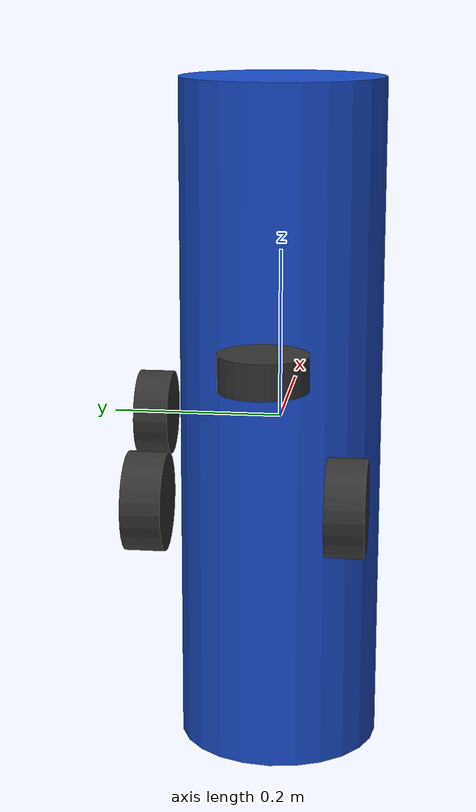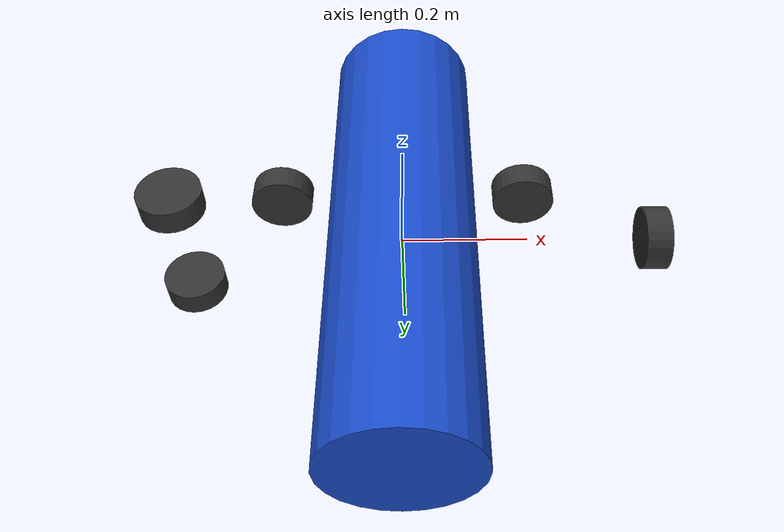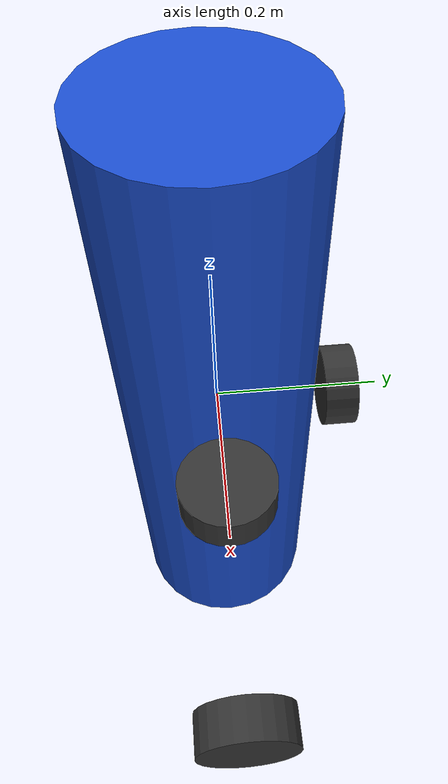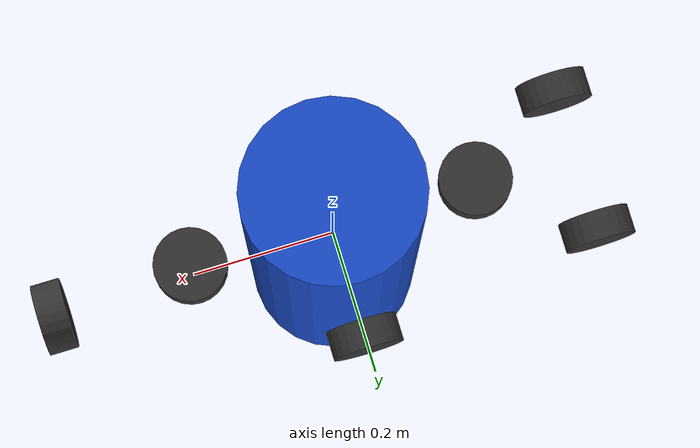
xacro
<?xml version="1.0"?>
<robot name="neptune" xmlns:xacro="http://www.ros.org/wiki/xacro">

  <!-- ===================== Properties ===================== -->
  <xacro:property name="body_length"  value="0.8"/>
  <xacro:property name="body_radius"  value="0.12"/>
  <xacro:property name="body_mass"    value="12.0"/>
  <xacro:property name="thruster_mass" value="0.2"/>
  <xacro:property name="thruster_r"   value="0.05"/>
  <xacro:property name="thruster_l"   value="0.04"/>

  <!-- ===================== Materials ====================== -->
  <material name="dark_grey">
    <color rgba="0.2 0.2 0.2 1.0"/>
  </material>
  <material name="blue">
    <color rgba="0.1 0.3 0.8 1.0"/>
  </material>

  <!-- ===================== Macros ========================= -->
  <xacro:macro name="thruster_link" params="name">
    <link name="${name}">
      <inertial>
        <mass value="${thruster_mass}"/>
        <inertia ixx="0.0001" ixy="0" ixz="0"
                 iyy="0.0001" iyz="0" izz="0.0001"/>
      </inertial>
      <visual>
        <geometry>
          <cylinder radius="${thruster_r}" length="${thruster_l}"/>
        </geometry>
        <material name="dark_grey"/>
      </visual>
      <collision>
        <geometry>
          <cylinder radius="${thruster_r}" length="${thruster_l}"/>
        </geometry>
      </collision>
    </link>
  </xacro:macro>

  <xacro:macro name="thruster_joint" params="name parent xyz rpy">
    <joint name="${name}_joint" type="fixed">
      <parent link="${parent}"/>
      <child  link="${name}"/>
      <origin xyz="${xyz}" rpy="${rpy}"/>
    </joint>
  </xacro:macro>

  <!-- ===================== Base Link ====================== -->
  <link name="base_link">
    <inertial>
      <mass value="${body_mass}"/>
      <inertia ixx="0.1" ixy="0" ixz="0"
               iyy="0.4" iyz="0" izz="0.4"/>
    </inertial>
    <visual>
      <geometry>
        <cylinder radius="${body_radius}" length="${body_length}"/>
      </geometry>
      <material name="blue"/>
    </visual>
    <collision>
      <geometry>
        <cylinder radius="${body_radius}" length="${body_length}"/>
      </geometry>
    </collision>
  </link>

  <!-- ===================== Thrusters ====================== -->
  <!-- Surge (forward/back) -->
  <xacro:thruster_link name="thruster_surge"/>
  <xacro:thruster_joint name="thruster_surge" parent="base_link"
    xyz="0.4 0 0" rpy="0 1.5707 0"/>

  <!-- Sway (left/right) -->
  <xacro:thruster_link name="thruster_sway"/>
  <xacro:thruster_joint name="thruster_sway" parent="base_link"
    xyz="0 0.15 0" rpy="1.5707 0 0"/>

  <!-- Heave front (up/down) -->
  <xacro:thruster_link name="thruster_heave_front"/>
  <xacro:thruster_joint name="thruster_heave_front" parent="base_link"
    xyz="0.2 0 0.1" rpy="0 0 0"/>

  <!-- Heave rear (up/down) -->
  <xacro:thruster_link name="thruster_heave_rear"/>
  <xacro:thruster_joint name="thruster_heave_rear" parent="base_link"
    xyz="-0.2 0 0.1" rpy="0 0 0"/>

  <!-- Yaw left -->
  <xacro:thruster_link name="thruster_yaw_left"/>
  <xacro:thruster_joint name="thruster_yaw_left" parent="base_link"
    xyz="-0.35 0.1 0" rpy="1.5707 0 0"/>

  <!-- Yaw right -->
  <xacro:thruster_link name="thruster_yaw_right"/>
  <xacro:thruster_joint name="thruster_yaw_right" parent="base_link"
    xyz="-0.35 -0.1 0" rpy="1.5707 0 0"/>

  <!-- =================== Gazebo Plugins ================== -->
  <!-- Ground truth odometry via Gazebo -->
  <gazebo>
    <plugin name="gazebo_ros_p3d" filename="libgazebo_ros_p3d.so">
      <ros>
        <namespace>/neptune</namespace>
        <remapping>odom:=ground_truth/odom</remapping>
      </ros>
      <body_name>base_link</body_name>
      <frame_name>world</frame_name>
      <update_rate>50.0</update_rate>
      <xyz_offset>0 0 0</xyz_offset>
      <rpy_offset>0 0 0</rpy_offset>
      <gaussian_noise>0.001</gaussian_noise>
    </plugin>
  </gazebo>

  <!-- IMU sensor -->
  <gazebo reference="base_link">
    <sensor name="imu_sensor" type="imu">
      <always_on>true</always_on>
      <update_rate>100</update_rate>
      <imu>
        <angular_velocity>
          <x><noise type="gaussian"><mean>0</mean><stddev>0.009</stddev></noise></x>
          <y><noise type="gaussian"><mean>0</mean><stddev>0.009</stddev></noise></y>
          <z><noise type="gaussian"><mean>0</mean><stddev>0.009</stddev></noise></z>
        </angular_velocity>
        <linear_acceleration>
          <x><noise type="gaussian"><mean>0</mean><stddev>0.021</stddev></noise></x>
          <y><noise type="gaussian"><mean>0</mean><stddev>0.021</stddev></noise></y>
          <z><noise type="gaussian"><mean>0</mean><stddev>0.021</stddev></noise></z>
        </linear_acceleration>
      </imu>
      <plugin name="gazebo_ros_imu_sensor" filename="libgazebo_ros_imu_sensor.so">
        <ros>
          <namespace>/neptune</namespace>
          <remapping>~/out:=imu/data</remapping>
        </ros>
        <initial_orientation_as_reference>false</initial_orientation_as_reference>
      </plugin>
    </sensor>
  </gazebo>

  <!-- Hydrodynamic drag approximation via a generic force plugin -->
  <gazebo>
    <plugin name="gazebo_ros_force" filename="libgazebo_ros_force.so">
      <ros>
        <namespace>/neptune</namespace>
        <remapping>gazebo_ros_force:=thruster/surge</remapping>
      </ros>
      <link_name>base_link</link_name>
      <force_frame>link</force_frame>
    </plugin>
  </gazebo>

</robot>
